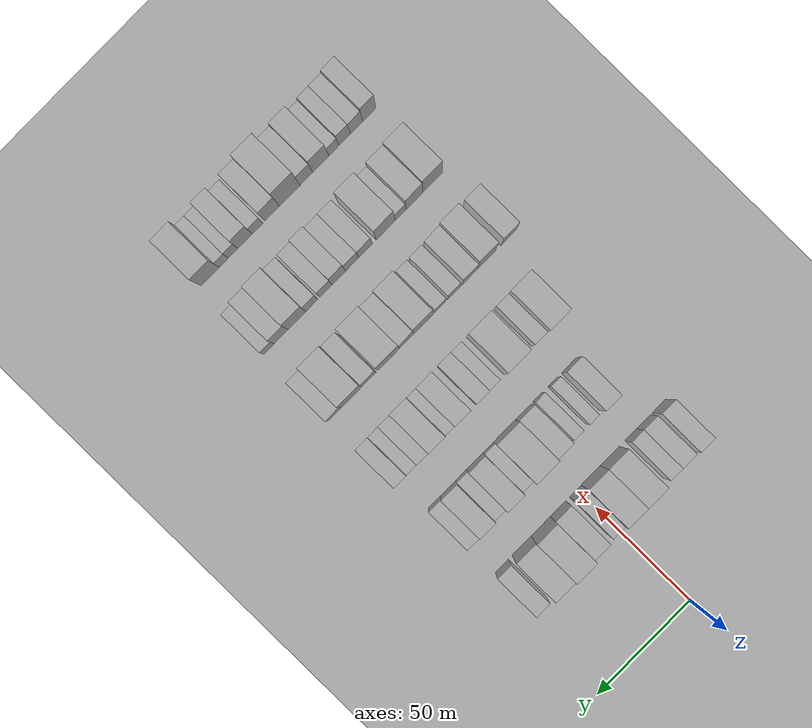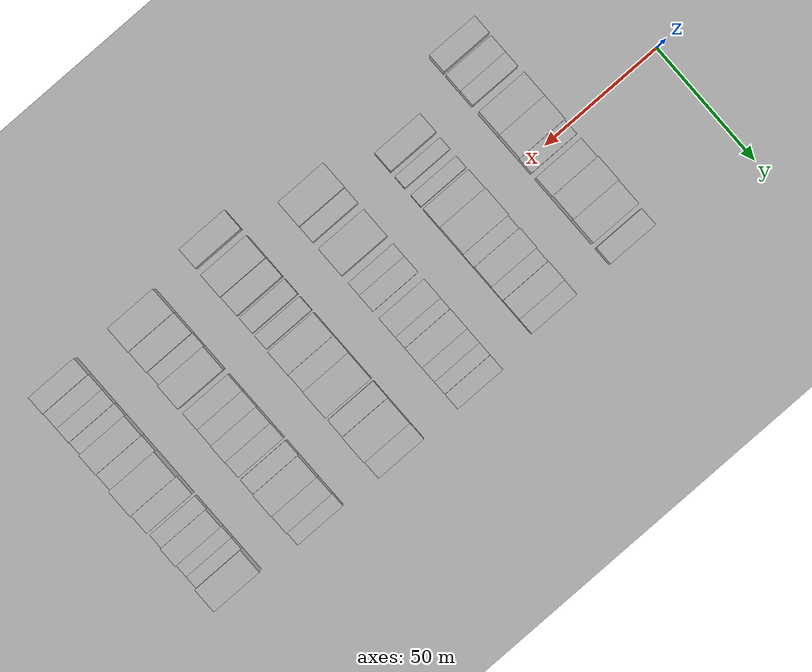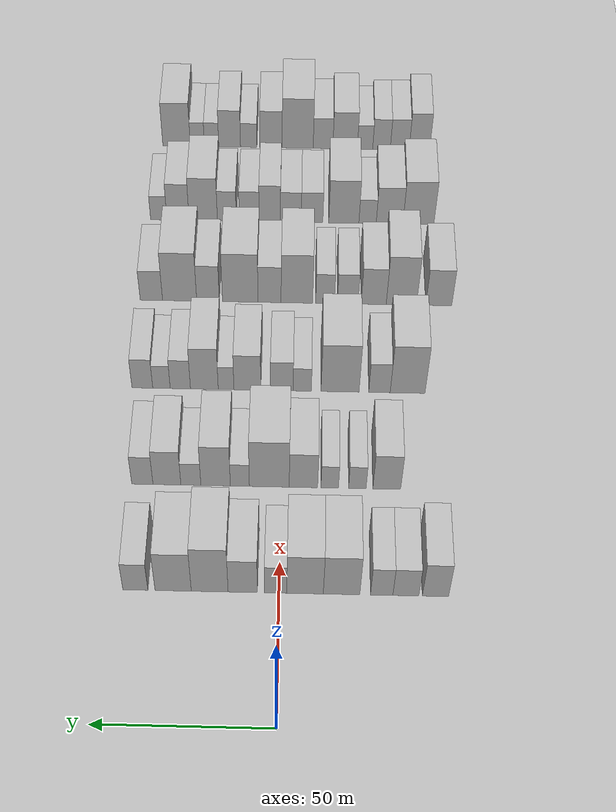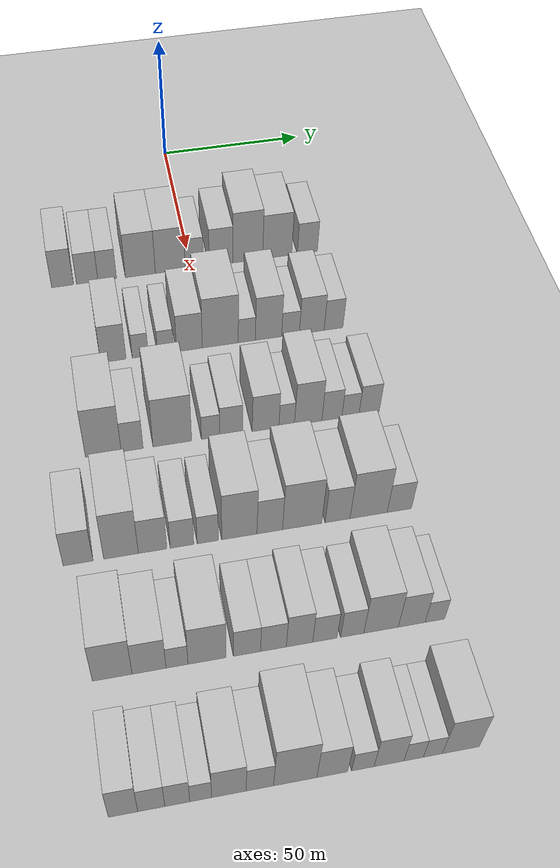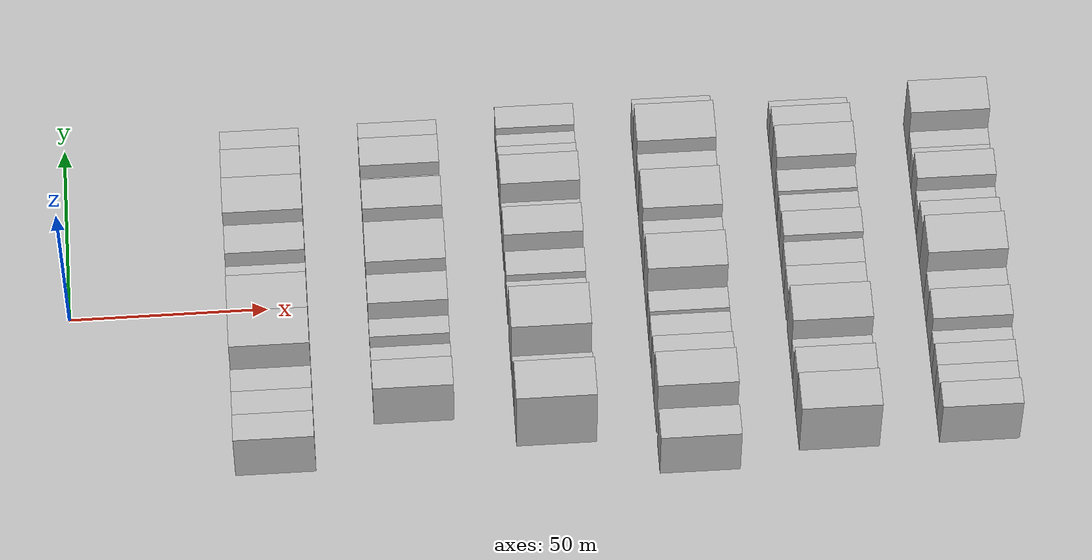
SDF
<sdf version="1.6">
 <world name="default">
  <include><name>ground_plane_1</name><uri>model://HANNAS_ground_plane</uri></include>
  <include>
   <name>ground_plane_2</name>
   <uri>model://HANNAS_ground_plane</uri>
   <pose>100 0 0  0 0 0</pose>
  </include>
  <model name="building_55">
   <static>1</static>
   <pose>50.0000 -43.9768 0 0.000000 0.000000 0.000000</pose>
   <link name="link">
    <pose>0 0 9.00 0 0 0</pose>
    <collision name="collision"><geometry><box><size>20.0000 7.3768 18.0000</size></box></geometry></collision>
    <visual name="visual">
     <cast_shadows>0</cast_shadows>
     <geometry><box><size>20.0000 7.3768 18.0000</size></box></geometry>
     <material>
      <script>
       <uri>model://HANNAS_wall/materials/scripts</uri>
       <uri>model://HANNAS_wall/materials/textures</uri>
       <name>vrc/HANNAS_wall</name>
      </script>
     </material>
    </visual>
   </link>
  </model>
  <model name="building_56">
   <static>1</static>
   <pose>50.0000 -35.6402 0 0.000000 0.000000 0.000000</pose>
   <link name="link">
    <pose>0 0 7.50 0 0 0</pose>
    <collision name="collision"><geometry><box><size>20.0000 7.2963 15.0000</size></box></geometry></collision>
    <visual name="visual">
     <cast_shadows>0</cast_shadows>
     <geometry><box><size>20.0000 7.2963 15.0000</size></box></geometry>
     <material>
      <script>
       <uri>model://HANNAS_wall/materials/scripts</uri>
       <uri>model://HANNAS_wall/materials/textures</uri>
       <name>vrc/HANNAS_wall</name>
      </script>
     </material>
    </visual>
   </link>
  </model>
  <model name="building_57">
   <static>1</static>
   <pose>50.0000 -28.8450 0 0.000000 0.000000 0.000000</pose>
   <link name="link">
    <pose>0 0 7.50 0 0 0</pose>
    <collision name="collision"><geometry><box><size>20.0000 6.2941 15.0000</size></box></geometry></collision>
    <visual name="visual">
     <cast_shadows>0</cast_shadows>
     <geometry><box><size>20.0000 6.2941 15.0000</size></box></geometry>
     <material>
      <script>
       <uri>model://HANNAS_wall/materials/scripts</uri>
       <uri>model://HANNAS_wall/materials/textures</uri>
       <name>vrc/HANNAS_wall</name>
      </script>
     </material>
    </visual>
   </link>
  </model>
  <model name="building_58">
   <static>1</static>
   <pose>50.0000 -17.5523 0 0.000000 0.000000 0.000000</pose>
   <link name="link">
    <pose>0 0 10.50 0 0 0</pose>
    <collision name="collision"><geometry><box><size>20.0000 10.2912 21.0000</size></box></geometry></collision>
    <visual name="visual">
     <cast_shadows>0</cast_shadows>
     <geometry><box><size>20.0000 10.2912 21.0000</size></box></geometry>
     <material>
      <script>
       <uri>model://HANNAS_wall/materials/scripts</uri>
       <uri>model://HANNAS_wall/materials/textures</uri>
       <name>vrc/HANNAS_wall</name>
      </script>
     </material>
    </visual>
   </link>
  </model>
  <model name="building_59">
   <static>1</static>
   <pose>50.0000 -7.2520 0 0.000000 0.000000 0.000000</pose>
   <link name="link">
    <pose>0 0 10.50 0 0 0</pose>
    <collision name="collision"><geometry><box><size>20.0000 10.3095 21.0000</size></box></geometry></collision>
    <visual name="visual">
     <cast_shadows>0</cast_shadows>
     <geometry><box><size>20.0000 10.3095 21.0000</size></box></geometry>
     <material>
      <script>
       <uri>model://HANNAS_wall/materials/scripts</uri>
       <uri>model://HANNAS_wall/materials/textures</uri>
       <name>vrc/HANNAS_wall</name>
      </script>
     </material>
    </visual>
   </link>
  </model>
  <model name="building_60">
   <static>1</static>
   <pose>50.0000 1.0371 0 0.000000 0.000000 0.000000</pose>
   <link name="link">
    <pose>0 0 7.50 0 0 0</pose>
    <collision name="collision"><geometry><box><size>20.0000 6.2686 15.0000</size></box></geometry></collision>
    <visual name="visual">
     <cast_shadows>0</cast_shadows>
     <geometry><box><size>20.0000 6.2686 15.0000</size></box></geometry>
     <material>
      <script>
       <uri>model://HANNAS_wall/materials/scripts</uri>
       <uri>model://HANNAS_wall/materials/textures</uri>
       <name>vrc/HANNAS_wall</name>
      </script>
     </material>
    </visual>
   </link>
  </model>
  <model name="building_61">
   <static>1</static>
   <pose>50.0000 10.2967 0 0.000000 0.000000 0.000000</pose>
   <link name="link">
    <pose>0 0 9.00 0 0 0</pose>
    <collision name="collision"><geometry><box><size>20.0000 8.2506 18.0000</size></box></geometry></collision>
    <visual name="visual">
     <cast_shadows>0</cast_shadows>
     <geometry><box><size>20.0000 8.2506 18.0000</size></box></geometry>
     <material>
      <script>
       <uri>model://HANNAS_wall/materials/scripts</uri>
       <uri>model://HANNAS_wall/materials/textures</uri>
       <name>vrc/HANNAS_wall</name>
      </script>
     </material>
    </visual>
   </link>
  </model>
  <model name="building_62">
   <static>1</static>
   <pose>50.0000 19.6122 0 0.000000 0.000000 0.000000</pose>
   <link name="link">
    <pose>0 0 12.00 0 0 0</pose>
    <collision name="collision"><geometry><box><size>20.0000 10.3805 24.0000</size></box></geometry></collision>
    <visual name="visual">
     <cast_shadows>0</cast_shadows>
     <geometry><box><size>20.0000 10.3805 24.0000</size></box></geometry>
     <material>
      <script>
       <uri>model://HANNAS_wall/materials/scripts</uri>
       <uri>model://HANNAS_wall/materials/textures</uri>
       <name>vrc/HANNAS_wall</name>
      </script>
     </material>
    </visual>
   </link>
  </model>
  <model name="building_63">
   <static>1</static>
   <pose>50.0000 29.9259 0 0.000000 0.000000 0.000000</pose>
   <link name="link">
    <pose>0 0 10.50 0 0 0</pose>
    <collision name="collision"><geometry><box><size>20.0000 10.2469 21.0000</size></box></geometry></collision>
    <visual name="visual">
     <cast_shadows>0</cast_shadows>
     <geometry><box><size>20.0000 10.2469 21.0000</size></box></geometry>
     <material>
      <script>
       <uri>model://HANNAS_wall/materials/scripts</uri>
       <uri>model://HANNAS_wall/materials/textures</uri>
       <name>vrc/HANNAS_wall</name>
      </script>
     </material>
    </visual>
   </link>
  </model>
  <model name="building_64">
   <static>1</static>
   <pose>50.0000 40.5911 0 0.000000 0.000000 0.000000</pose>
   <link name="link">
    <pose>0 0 7.50 0 0 0</pose>
    <collision name="collision"><geometry><box><size>20.0000 7.0836 15.0000</size></box></geometry></collision>
    <visual name="visual">
     <cast_shadows>0</cast_shadows>
     <geometry><box><size>20.0000 7.0836 15.0000</size></box></geometry>
     <material>
      <script>
       <uri>model://HANNAS_wall/materials/scripts</uri>
       <uri>model://HANNAS_wall/materials/textures</uri>
       <name>vrc/HANNAS_wall</name>
      </script>
     </material>
    </visual>
   </link>
  </model>
  <model name="building_175">
   <static>1</static>
   <pose>85.0000 -31.0818 0 0.000000 0.000000 0.000000</pose>
   <link name="link">
    <pose>0 0 9.00 0 0 0</pose>
    <collision name="collision"><geometry><box><size>20.0000 8.2055 18.0000</size></box></geometry></collision>
    <visual name="visual">
     <cast_shadows>0</cast_shadows>
     <geometry><box><size>20.0000 8.2055 18.0000</size></box></geometry>
     <material>
      <script>
       <uri>model://HANNAS_wall/materials/scripts</uri>
       <uri>model://HANNAS_wall/materials/textures</uri>
       <name>vrc/HANNAS_wall</name>
      </script>
     </material>
    </visual>
   </link>
  </model>
  <model name="building_176">
   <static>1</static>
   <pose>85.0000 -22.3887 0 0.000000 0.000000 0.000000</pose>
   <link name="link">
    <pose>0 0 6.00 0 0 0</pose>
    <collision name="collision"><geometry><box><size>20.0000 5.1806 12.0000</size></box></geometry></collision>
    <visual name="visual">
     <cast_shadows>0</cast_shadows>
     <geometry><box><size>20.0000 5.1806 12.0000</size></box></geometry>
     <material>
      <script>
       <uri>model://HANNAS_wall/materials/scripts</uri>
       <uri>model://HANNAS_wall/materials/textures</uri>
       <name>vrc/HANNAS_wall</name>
      </script>
     </material>
    </visual>
   </link>
  </model>
  <model name="building_177">
   <static>1</static>
   <pose>85.0000 -14.2085 0 0.000000 0.000000 0.000000</pose>
   <link name="link">
    <pose>0 0 6.00 0 0 0</pose>
    <collision name="collision"><geometry><box><size>20.0000 5.1797 12.0000</size></box></geometry></collision>
    <visual name="visual">
     <cast_shadows>0</cast_shadows>
     <geometry><box><size>20.0000 5.1797 12.0000</size></box></geometry>
     <material>
      <script>
       <uri>model://HANNAS_wall/materials/scripts</uri>
       <uri>model://HANNAS_wall/materials/textures</uri>
       <name>vrc/HANNAS_wall</name>
      </script>
     </material>
    </visual>
   </link>
  </model>
  <model name="building_178">
   <static>1</static>
   <pose>85.0000 -6.4196 0 0.000000 0.000000 0.000000</pose>
   <link name="link">
    <pose>0 0 9.00 0 0 0</pose>
    <collision name="collision"><geometry><box><size>20.0000 8.3982 18.0000</size></box></geometry></collision>
    <visual name="visual">
     <cast_shadows>0</cast_shadows>
     <geometry><box><size>20.0000 8.3982 18.0000</size></box></geometry>
     <material>
      <script>
       <uri>model://HANNAS_wall/materials/scripts</uri>
       <uri>model://HANNAS_wall/materials/textures</uri>
       <name>vrc/HANNAS_wall</name>
      </script>
     </material>
    </visual>
   </link>
  </model>
  <model name="building_179">
   <static>1</static>
   <pose>85.0000 3.6711 0 0.000000 0.000000 0.000000</pose>
   <link name="link">
    <pose>0 0 12.00 0 0 0</pose>
    <collision name="collision"><geometry><box><size>20.0000 11.7831 24.0000</size></box></geometry></collision>
    <visual name="visual">
     <cast_shadows>0</cast_shadows>
     <geometry><box><size>20.0000 11.7831 24.0000</size></box></geometry>
     <material>
      <script>
       <uri>model://HANNAS_wall/materials/scripts</uri>
       <uri>model://HANNAS_wall/materials/textures</uri>
       <name>vrc/HANNAS_wall</name>
      </script>
     </material>
    </visual>
   </link>
  </model>
  <model name="building_180">
   <static>1</static>
   <pose>85.0000 12.3757 0 0.000000 0.000000 0.000000</pose>
   <link name="link">
    <pose>0 0 6.00 0 0 0</pose>
    <collision name="collision"><geometry><box><size>20.0000 5.6262 12.0000</size></box></geometry></collision>
    <visual name="visual">
     <cast_shadows>0</cast_shadows>
     <geometry><box><size>20.0000 5.6262 12.0000</size></box></geometry>
     <material>
      <script>
       <uri>model://HANNAS_wall/materials/scripts</uri>
       <uri>model://HANNAS_wall/materials/textures</uri>
       <name>vrc/HANNAS_wall</name>
      </script>
     </material>
    </visual>
   </link>
  </model>
  <model name="building_181">
   <static>1</static>
   <pose>85.0000 19.5526 0 0.000000 0.000000 0.000000</pose>
   <link name="link">
    <pose>0 0 10.50 0 0 0</pose>
    <collision name="collision"><geometry><box><size>20.0000 8.7275 21.0000</size></box></geometry></collision>
    <visual name="visual">
     <cast_shadows>0</cast_shadows>
     <geometry><box><size>20.0000 8.7275 21.0000</size></box></geometry>
     <material>
      <script>
       <uri>model://HANNAS_wall/materials/scripts</uri>
       <uri>model://HANNAS_wall/materials/textures</uri>
       <name>vrc/HANNAS_wall</name>
      </script>
     </material>
    </visual>
   </link>
  </model>
  <model name="building_182">
   <static>1</static>
   <pose>85.0000 26.8824 0 0.000000 0.000000 0.000000</pose>
   <link name="link">
    <pose>0 0 6.00 0 0 0</pose>
    <collision name="collision"><geometry><box><size>20.0000 5.9322 12.0000</size></box></geometry></collision>
    <visual name="visual">
     <cast_shadows>0</cast_shadows>
     <geometry><box><size>20.0000 5.9322 12.0000</size></box></geometry>
     <material>
      <script>
       <uri>model://HANNAS_wall/materials/scripts</uri>
       <uri>model://HANNAS_wall/materials/textures</uri>
       <name>vrc/HANNAS_wall</name>
      </script>
     </material>
    </visual>
   </link>
  </model>
  <model name="building_183">
   <static>1</static>
   <pose>85.0000 33.9861 0 0.000000 0.000000 0.000000</pose>
   <link name="link">
    <pose>0 0 9.00 0 0 0</pose>
    <collision name="collision"><geometry><box><size>20.0000 8.2751 18.0000</size></box></geometry></collision>
    <visual name="visual">
     <cast_shadows>0</cast_shadows>
     <geometry><box><size>20.0000 8.2751 18.0000</size></box></geometry>
     <material>
      <script>
       <uri>model://HANNAS_wall/materials/scripts</uri>
       <uri>model://HANNAS_wall/materials/textures</uri>
       <name>vrc/HANNAS_wall</name>
      </script>
     </material>
    </visual>
   </link>
  </model>
  <model name="building_184">
   <static>1</static>
   <pose>85.0000 41.2750 0 0.000000 0.000000 0.000000</pose>
   <link name="link">
    <pose>0 0 7.50 0 0 0</pose>
    <collision name="collision"><geometry><box><size>20.0000 6.3028 15.0000</size></box></geometry></collision>
    <visual name="visual">
     <cast_shadows>0</cast_shadows>
     <geometry><box><size>20.0000 6.3028 15.0000</size></box></geometry>
     <material>
      <script>
       <uri>model://HANNAS_wall/materials/scripts</uri>
       <uri>model://HANNAS_wall/materials/textures</uri>
       <name>vrc/HANNAS_wall</name>
      </script>
     </material>
    </visual>
   </link>
  </model>
  <model name="building_298">
   <static>1</static>
   <pose>120.0000 -38.3432 0 0.000000 0.000000 0.000000</pose>
   <link name="link">
    <pose>0 0 12.00 0 0 0</pose>
    <collision name="collision"><geometry><box><size>20.0000 10.7749 24.0000</size></box></geometry></collision>
    <visual name="visual">
     <cast_shadows>0</cast_shadows>
     <geometry><box><size>20.0000 10.7749 24.0000</size></box></geometry>
     <material>
      <script>
       <uri>model://HANNAS_wall/materials/scripts</uri>
       <uri>model://HANNAS_wall/materials/textures</uri>
       <name>vrc/HANNAS_wall</name>
      </script>
     </material>
    </visual>
   </link>
  </model>
  <model name="building_299">
   <static>1</static>
   <pose>120.0000 -29.6377 0 0.000000 0.000000 0.000000</pose>
   <link name="link">
    <pose>0 0 7.50 0 0 0</pose>
    <collision name="collision"><geometry><box><size>20.0000 6.6361 15.0000</size></box></geometry></collision>
    <visual name="visual">
     <cast_shadows>0</cast_shadows>
     <geometry><box><size>20.0000 6.6361 15.0000</size></box></geometry>
     <material>
      <script>
       <uri>model://HANNAS_wall/materials/scripts</uri>
       <uri>model://HANNAS_wall/materials/textures</uri>
       <name>vrc/HANNAS_wall</name>
      </script>
     </material>
    </visual>
   </link>
  </model>
  <model name="building_300">
   <static>1</static>
   <pose>120.0000 -17.4165 0 0.000000 0.000000 0.000000</pose>
   <link name="link">
    <pose>0 0 12.00 0 0 0</pose>
    <collision name="collision"><geometry><box><size>20.0000 11.8064 24.0000</size></box></geometry></collision>
    <visual name="visual">
     <cast_shadows>0</cast_shadows>
     <geometry><box><size>20.0000 11.8064 24.0000</size></box></geometry>
     <material>
      <script>
       <uri>model://HANNAS_wall/materials/scripts</uri>
       <uri>model://HANNAS_wall/materials/textures</uri>
       <name>vrc/HANNAS_wall</name>
      </script>
     </material>
    </visual>
   </link>
  </model>
  <model name="building_301">
   <static>1</static>
   <pose>120.0000 -5.6868 0 0.000000 0.000000 0.000000</pose>
   <link name="link">
    <pose>0 0 6.00 0 0 0</pose>
    <collision name="collision"><geometry><box><size>20.0000 5.6530 12.0000</size></box></geometry></collision>
    <visual name="visual">
     <cast_shadows>0</cast_shadows>
     <geometry><box><size>20.0000 5.6530 12.0000</size></box></geometry>
     <material>
      <script>
       <uri>model://HANNAS_wall/materials/scripts</uri>
       <uri>model://HANNAS_wall/materials/textures</uri>
       <name>vrc/HANNAS_wall</name>
      </script>
     </material>
    </visual>
   </link>
  </model>
  <model name="building_302">
   <static>1</static>
   <pose>120.0000 0.6489 0 0.000000 0.000000 0.000000</pose>
   <link name="link">
    <pose>0 0 7.50 0 0 0</pose>
    <collision name="collision"><geometry><box><size>20.0000 7.0184 15.0000</size></box></geometry></collision>
    <visual name="visual">
     <cast_shadows>0</cast_shadows>
     <geometry><box><size>20.0000 7.0184 15.0000</size></box></geometry>
     <material>
      <script>
       <uri>model://HANNAS_wall/materials/scripts</uri>
       <uri>model://HANNAS_wall/materials/textures</uri>
       <name>vrc/HANNAS_wall</name>
      </script>
     </material>
    </visual>
   </link>
  </model>
  <model name="building_303">
   <static>1</static>
   <pose>120.0000 11.3256 0 0.000000 0.000000 0.000000</pose>
   <link name="link">
    <pose>0 0 9.00 0 0 0</pose>
    <collision name="collision"><geometry><box><size>20.0000 8.3350 18.0000</size></box></geometry></collision>
    <visual name="visual">
     <cast_shadows>0</cast_shadows>
     <geometry><box><size>20.0000 8.3350 18.0000</size></box></geometry>
     <material>
      <script>
       <uri>model://HANNAS_wall/materials/scripts</uri>
       <uri>model://HANNAS_wall/materials/textures</uri>
       <name>vrc/HANNAS_wall</name>
      </script>
     </material>
    </visual>
   </link>
  </model>
  <model name="building_304">
   <static>1</static>
   <pose>120.0000 17.9224 0 0.000000 0.000000 0.000000</pose>
   <link name="link">
    <pose>0 0 6.00 0 0 0</pose>
    <collision name="collision"><geometry><box><size>20.0000 4.8585 12.0000</size></box></geometry></collision>
    <visual name="visual">
     <cast_shadows>0</cast_shadows>
     <geometry><box><size>20.0000 4.8585 12.0000</size></box></geometry>
     <material>
      <script>
       <uri>model://HANNAS_wall/materials/scripts</uri>
       <uri>model://HANNAS_wall/materials/textures</uri>
       <name>vrc/HANNAS_wall</name>
      </script>
     </material>
    </visual>
   </link>
  </model>
  <model name="building_305">
   <static>1</static>
   <pose>120.0000 24.6654 0 0.000000 0.000000 0.000000</pose>
   <link name="link">
    <pose>0 0 10.50 0 0 0</pose>
    <collision name="collision"><geometry><box><size>20.0000 8.6275 21.0000</size></box></geometry></collision>
    <visual name="visual">
     <cast_shadows>0</cast_shadows>
     <geometry><box><size>20.0000 8.6275 21.0000</size></box></geometry>
     <material>
      <script>
       <uri>model://HANNAS_wall/materials/scripts</uri>
       <uri>model://HANNAS_wall/materials/textures</uri>
       <name>vrc/HANNAS_wall</name>
      </script>
     </material>
    </visual>
   </link>
  </model>
  <model name="building_306">
   <static>1</static>
   <pose>120.0000 32.1276 0 0.000000 0.000000 0.000000</pose>
   <link name="link">
    <pose>0 0 7.50 0 0 0</pose>
    <collision name="collision"><geometry><box><size>20.0000 6.2968 15.0000</size></box></geometry></collision>
    <visual name="visual">
     <cast_shadows>0</cast_shadows>
     <geometry><box><size>20.0000 6.2968 15.0000</size></box></geometry>
     <material>
      <script>
       <uri>model://HANNAS_wall/materials/scripts</uri>
       <uri>model://HANNAS_wall/materials/textures</uri>
       <name>vrc/HANNAS_wall</name>
      </script>
     </material>
    </visual>
   </link>
  </model>
  <model name="building_307">
   <static>1</static>
   <pose>120.0000 37.9907 0 0.000000 0.000000 0.000000</pose>
   <link name="link">
    <pose>0 0 6.00 0 0 0</pose>
    <collision name="collision"><geometry><box><size>20.0000 5.4295 12.0000</size></box></geometry></collision>
    <visual name="visual">
     <cast_shadows>0</cast_shadows>
     <geometry><box><size>20.0000 5.4295 12.0000</size></box></geometry>
     <material>
      <script>
       <uri>model://HANNAS_wall/materials/scripts</uri>
       <uri>model://HANNAS_wall/materials/textures</uri>
       <name>vrc/HANNAS_wall</name>
      </script>
     </material>
    </visual>
   </link>
  </model>
  <model name="building_308">
   <static>1</static>
   <pose>120.0000 43.9283 0 0.000000 0.000000 0.000000</pose>
   <link name="link">
    <pose>0 0 7.50 0 0 0</pose>
    <collision name="collision"><geometry><box><size>20.0000 6.4457 15.0000</size></box></geometry></collision>
    <visual name="visual">
     <cast_shadows>0</cast_shadows>
     <geometry><box><size>20.0000 6.4457 15.0000</size></box></geometry>
     <material>
      <script>
       <uri>model://HANNAS_wall/materials/scripts</uri>
       <uri>model://HANNAS_wall/materials/textures</uri>
       <name>vrc/HANNAS_wall</name>
      </script>
     </material>
    </visual>
   </link>
  </model>
  <model name="building_418">
   <static>1</static>
   <pose>155.0000 -49.5287 0 0.000000 0.000000 0.000000</pose>
   <link name="link">
    <pose>0 0 9.00 0 0 0</pose>
    <collision name="collision"><geometry><box><size>20.0000 8.3902 18.0000</size></box></geometry></collision>
    <visual name="visual">
     <cast_shadows>0</cast_shadows>
     <geometry><box><size>20.0000 8.3902 18.0000</size></box></geometry>
     <material>
      <script>
       <uri>model://HANNAS_wall/materials/scripts</uri>
       <uri>model://HANNAS_wall/materials/textures</uri>
       <name>vrc/HANNAS_wall</name>
      </script>
     </material>
    </visual>
   </link>
  </model>
  <model name="building_419">
   <static>1</static>
   <pose>155.0000 -37.4310 0 0.000000 0.000000 0.000000</pose>
   <link name="link">
    <pose>0 0 12.00 0 0 0</pose>
    <collision name="collision"><geometry><box><size>20.0000 9.8051 24.0000</size></box></geometry></collision>
    <visual name="visual">
     <cast_shadows>0</cast_shadows>
     <geometry><box><size>20.0000 9.8051 24.0000</size></box></geometry>
     <material>
      <script>
       <uri>model://HANNAS_wall/materials/scripts</uri>
       <uri>model://HANNAS_wall/materials/textures</uri>
       <name>vrc/HANNAS_wall</name>
      </script>
     </material>
    </visual>
   </link>
  </model>
  <model name="building_420">
   <static>1</static>
   <pose>155.0000 -28.4761 0 0.000000 0.000000 0.000000</pose>
   <link name="link">
    <pose>0 0 9.00 0 0 0</pose>
    <collision name="collision"><geometry><box><size>20.0000 8.1049 18.0000</size></box></geometry></collision>
    <visual name="visual">
     <cast_shadows>0</cast_shadows>
     <geometry><box><size>20.0000 8.1049 18.0000</size></box></geometry>
     <material>
      <script>
       <uri>model://HANNAS_wall/materials/scripts</uri>
       <uri>model://HANNAS_wall/materials/textures</uri>
       <name>vrc/HANNAS_wall</name>
      </script>
     </material>
    </visual>
   </link>
  </model>
  <model name="building_421">
   <static>1</static>
   <pose>155.0000 -20.0626 0 0.000000 0.000000 0.000000</pose>
   <link name="link">
    <pose>0 0 7.50 0 0 0</pose>
    <collision name="collision"><geometry><box><size>20.0000 6.7221 15.0000</size></box></geometry></collision>
    <visual name="visual">
     <cast_shadows>0</cast_shadows>
     <geometry><box><size>20.0000 6.7221 15.0000</size></box></geometry>
     <material>
      <script>
       <uri>model://HANNAS_wall/materials/scripts</uri>
       <uri>model://HANNAS_wall/materials/textures</uri>
       <name>vrc/HANNAS_wall</name>
      </script>
     </material>
    </visual>
   </link>
  </model>
  <model name="building_422">
   <static>1</static>
   <pose>155.0000 -12.6733 0 0.000000 0.000000 0.000000</pose>
   <link name="link">
    <pose>0 0 7.50 0 0 0</pose>
    <collision name="collision"><geometry><box><size>20.0000 6.0564 15.0000</size></box></geometry></collision>
    <visual name="visual">
     <cast_shadows>0</cast_shadows>
     <geometry><box><size>20.0000 6.0564 15.0000</size></box></geometry>
     <material>
      <script>
       <uri>model://HANNAS_wall/materials/scripts</uri>
       <uri>model://HANNAS_wall/materials/textures</uri>
       <name>vrc/HANNAS_wall</name>
      </script>
     </material>
    </visual>
   </link>
  </model>
  <model name="building_423">
   <static>1</static>
   <pose>155.0000 -3.5448 0 0.000000 0.000000 0.000000</pose>
   <link name="link">
    <pose>0 0 12.00 0 0 0</pose>
    <collision name="collision"><geometry><box><size>20.0000 10.2007 24.0000</size></box></geometry></collision>
    <visual name="visual">
     <cast_shadows>0</cast_shadows>
     <geometry><box><size>20.0000 10.2007 24.0000</size></box></geometry>
     <material>
      <script>
       <uri>model://HANNAS_wall/materials/scripts</uri>
       <uri>model://HANNAS_wall/materials/textures</uri>
       <name>vrc/HANNAS_wall</name>
      </script>
     </material>
    </visual>
   </link>
  </model>
  <model name="building_424">
   <static>1</static>
   <pose>155.0000 5.3034 0 0.000000 0.000000 0.000000</pose>
   <link name="link">
    <pose>0 0 9.00 0 0 0</pose>
    <collision name="collision"><geometry><box><size>20.0000 7.4955 18.0000</size></box></geometry></collision>
    <visual name="visual">
     <cast_shadows>0</cast_shadows>
     <geometry><box><size>20.0000 7.4955 18.0000</size></box></geometry>
     <material>
      <script>
       <uri>model://HANNAS_wall/materials/scripts</uri>
       <uri>model://HANNAS_wall/materials/textures</uri>
       <name>vrc/HANNAS_wall</name>
      </script>
     </material>
    </visual>
   </link>
  </model>
  <model name="building_425">
   <static>1</static>
   <pose>155.0000 14.8056 0 0.000000 0.000000 0.000000</pose>
   <link name="link">
    <pose>0 0 12.00 0 0 0</pose>
    <collision name="collision"><geometry><box><size>20.0000 11.5089 24.0000</size></box></geometry></collision>
    <visual name="visual">
     <cast_shadows>0</cast_shadows>
     <geometry><box><size>20.0000 11.5089 24.0000</size></box></geometry>
     <material>
      <script>
       <uri>model://HANNAS_wall/materials/scripts</uri>
       <uri>model://HANNAS_wall/materials/textures</uri>
       <name>vrc/HANNAS_wall</name>
      </script>
     </material>
    </visual>
   </link>
  </model>
  <model name="building_426">
   <static>1</static>
   <pose>155.0000 25.2402 0 0.000000 0.000000 0.000000</pose>
   <link name="link">
    <pose>0 0 9.00 0 0 0</pose>
    <collision name="collision"><geometry><box><size>20.0000 7.3604 18.0000</size></box></geometry></collision>
    <visual name="visual">
     <cast_shadows>0</cast_shadows>
     <geometry><box><size>20.0000 7.3604 18.0000</size></box></geometry>
     <material>
      <script>
       <uri>model://HANNAS_wall/materials/scripts</uri>
       <uri>model://HANNAS_wall/materials/textures</uri>
       <name>vrc/HANNAS_wall</name>
      </script>
     </material>
    </visual>
   </link>
  </model>
  <model name="building_427">
   <static>1</static>
   <pose>155.0000 34.4680 0 0.000000 0.000000 0.000000</pose>
   <link name="link">
    <pose>0 0 12.00 0 0 0</pose>
    <collision name="collision"><geometry><box><size>20.0000 11.0951 24.0000</size></box></geometry></collision>
    <visual name="visual">
     <cast_shadows>0</cast_shadows>
     <geometry><box><size>20.0000 11.0951 24.0000</size></box></geometry>
     <material>
      <script>
       <uri>model://HANNAS_wall/materials/scripts</uri>
       <uri>model://HANNAS_wall/materials/textures</uri>
       <name>vrc/HANNAS_wall</name>
      </script>
     </material>
    </visual>
   </link>
  </model>
  <model name="building_428">
   <static>1</static>
   <pose>155.0000 43.6502 0 0.000000 0.000000 0.000000</pose>
   <link name="link">
    <pose>0 0 7.50 0 0 0</pose>
    <collision name="collision"><geometry><box><size>20.0000 7.2694 15.0000</size></box></geometry></collision>
    <visual name="visual">
     <cast_shadows>0</cast_shadows>
     <geometry><box><size>20.0000 7.2694 15.0000</size></box></geometry>
     <material>
      <script>
       <uri>model://HANNAS_wall/materials/scripts</uri>
       <uri>model://HANNAS_wall/materials/textures</uri>
       <name>vrc/HANNAS_wall</name>
      </script>
     </material>
    </visual>
   </link>
  </model>
  <model name="building_546">
   <static>1</static>
   <pose>190.0000 -44.1742 0 0.000000 0.000000 0.000000</pose>
   <link name="link">
    <pose>0 0 10.50 0 0 0</pose>
    <collision name="collision"><geometry><box><size>20.0000 10.4614 21.0000</size></box></geometry></collision>
    <visual name="visual">
     <cast_shadows>0</cast_shadows>
     <geometry><box><size>20.0000 10.4614 21.0000</size></box></geometry>
     <material>
      <script>
       <uri>model://HANNAS_wall/materials/scripts</uri>
       <uri>model://HANNAS_wall/materials/textures</uri>
       <name>vrc/HANNAS_wall</name>
      </script>
     </material>
    </visual>
   </link>
  </model>
  <model name="building_547">
   <static>1</static>
   <pose>190.0000 -34.4466 0 0.000000 0.000000 0.000000</pose>
   <link name="link">
    <pose>0 0 9.00 0 0 0</pose>
    <collision name="collision"><geometry><box><size>20.0000 8.9940 18.0000</size></box></geometry></collision>
    <visual name="visual">
     <cast_shadows>0</cast_shadows>
     <geometry><box><size>20.0000 8.9940 18.0000</size></box></geometry>
     <material>
      <script>
       <uri>model://HANNAS_wall/materials/scripts</uri>
       <uri>model://HANNAS_wall/materials/textures</uri>
       <name>vrc/HANNAS_wall</name>
      </script>
     </material>
    </visual>
   </link>
  </model>
  <model name="building_548">
   <static>1</static>
   <pose>190.0000 -27.0204 0 0.000000 0.000000 0.000000</pose>
   <link name="link">
    <pose>0 0 6.00 0 0 0</pose>
    <collision name="collision"><geometry><box><size>20.0000 5.8584 12.0000</size></box></geometry></collision>
    <visual name="visual">
     <cast_shadows>0</cast_shadows>
     <geometry><box><size>20.0000 5.8584 12.0000</size></box></geometry>
     <material>
      <script>
       <uri>model://HANNAS_wall/materials/scripts</uri>
       <uri>model://HANNAS_wall/materials/textures</uri>
       <name>vrc/HANNAS_wall</name>
      </script>
     </material>
    </visual>
   </link>
  </model>
  <model name="building_549">
   <static>1</static>
   <pose>190.0000 -18.9887 0 0.000000 0.000000 0.000000</pose>
   <link name="link">
    <pose>0 0 10.50 0 0 0</pose>
    <collision name="collision"><geometry><box><size>20.0000 10.2049 21.0000</size></box></geometry></collision>
    <visual name="visual">
     <cast_shadows>0</cast_shadows>
     <geometry><box><size>20.0000 10.2049 21.0000</size></box></geometry>
     <material>
      <script>
       <uri>model://HANNAS_wall/materials/scripts</uri>
       <uri>model://HANNAS_wall/materials/textures</uri>
       <name>vrc/HANNAS_wall</name>
      </script>
     </material>
    </visual>
   </link>
  </model>
  <model name="building_550">
   <static>1</static>
   <pose>190.0000 -8.2223 0 0.000000 0.000000 0.000000</pose>
   <link name="link">
    <pose>0 0 7.50 0 0 0</pose>
    <collision name="collision"><geometry><box><size>20.0000 7.3279 15.0000</size></box></geometry></collision>
    <visual name="visual">
     <cast_shadows>0</cast_shadows>
     <geometry><box><size>20.0000 7.3279 15.0000</size></box></geometry>
     <material>
      <script>
       <uri>model://HANNAS_wall/materials/scripts</uri>
       <uri>model://HANNAS_wall/materials/textures</uri>
       <name>vrc/HANNAS_wall</name>
      </script>
     </material>
    </visual>
   </link>
  </model>
  <model name="building_551">
   <static>1</static>
   <pose>190.0000 -1.0425 0 0.000000 0.000000 0.000000</pose>
   <link name="link">
    <pose>0 0 7.50 0 0 0</pose>
    <collision name="collision"><geometry><box><size>20.0000 7.0317 15.0000</size></box></geometry></collision>
    <visual name="visual">
     <cast_shadows>0</cast_shadows>
     <geometry><box><size>20.0000 7.0317 15.0000</size></box></geometry>
     <material>
      <script>
       <uri>model://HANNAS_wall/materials/scripts</uri>
       <uri>model://HANNAS_wall/materials/textures</uri>
       <name>vrc/HANNAS_wall</name>
      </script>
     </material>
    </visual>
   </link>
  </model>
  <model name="building_552">
   <static>1</static>
   <pose>190.0000 6.0773 0 0.000000 0.000000 0.000000</pose>
   <link name="link">
    <pose>0 0 9.00 0 0 0</pose>
    <collision name="collision"><geometry><box><size>20.0000 7.2080 18.0000</size></box></geometry></collision>
    <visual name="visual">
     <cast_shadows>0</cast_shadows>
     <geometry><box><size>20.0000 7.2080 18.0000</size></box></geometry>
     <material>
      <script>
       <uri>model://HANNAS_wall/materials/scripts</uri>
       <uri>model://HANNAS_wall/materials/textures</uri>
       <name>vrc/HANNAS_wall</name>
      </script>
     </material>
    </visual>
   </link>
  </model>
  <model name="building_553">
   <static>1</static>
   <pose>190.0000 13.0309 0 0.000000 0.000000 0.000000</pose>
   <link name="link">
    <pose>0 0 7.50 0 0 0</pose>
    <collision name="collision"><geometry><box><size>20.0000 6.6991 15.0000</size></box></geometry></collision>
    <visual name="visual">
     <cast_shadows>0</cast_shadows>
     <geometry><box><size>20.0000 6.6991 15.0000</size></box></geometry>
     <material>
      <script>
       <uri>model://HANNAS_wall/materials/scripts</uri>
       <uri>model://HANNAS_wall/materials/textures</uri>
       <name>vrc/HANNAS_wall</name>
      </script>
     </material>
    </visual>
   </link>
  </model>
  <model name="building_554">
   <static>1</static>
   <pose>190.0000 20.5789 0 0.000000 0.000000 0.000000</pose>
   <link name="link">
    <pose>0 0 7.50 0 0 0</pose>
    <collision name="collision"><geometry><box><size>20.0000 6.3971 15.0000</size></box></geometry></collision>
    <visual name="visual">
     <cast_shadows>0</cast_shadows>
     <geometry><box><size>20.0000 6.3971 15.0000</size></box></geometry>
     <material>
      <script>
       <uri>model://HANNAS_wall/materials/scripts</uri>
       <uri>model://HANNAS_wall/materials/textures</uri>
       <name>vrc/HANNAS_wall</name>
      </script>
     </material>
    </visual>
   </link>
  </model>
  <model name="building_555">
   <static>1</static>
   <pose>190.0000 28.5827 0 0.000000 0.000000 0.000000</pose>
   <link name="link">
    <pose>0 0 10.50 0 0 0</pose>
    <collision name="collision"><geometry><box><size>20.0000 9.6104 21.0000</size></box></geometry></collision>
    <visual name="visual">
     <cast_shadows>0</cast_shadows>
     <geometry><box><size>20.0000 9.6104 21.0000</size></box></geometry>
     <material>
      <script>
       <uri>model://HANNAS_wall/materials/scripts</uri>
       <uri>model://HANNAS_wall/materials/textures</uri>
       <name>vrc/HANNAS_wall</name>
      </script>
     </material>
    </visual>
   </link>
  </model>
  <model name="building_556">
   <static>1</static>
   <pose>190.0000 37.1460 0 0.000000 0.000000 0.000000</pose>
   <link name="link">
    <pose>0 0 9.00 0 0 0</pose>
    <collision name="collision"><geometry><box><size>20.0000 7.5162 18.0000</size></box></geometry></collision>
    <visual name="visual">
     <cast_shadows>0</cast_shadows>
     <geometry><box><size>20.0000 7.5162 18.0000</size></box></geometry>
     <material>
      <script>
       <uri>model://HANNAS_wall/materials/scripts</uri>
       <uri>model://HANNAS_wall/materials/textures</uri>
       <name>vrc/HANNAS_wall</name>
      </script>
     </material>
    </visual>
   </link>
  </model>
  <model name="building_557">
   <static>1</static>
   <pose>190.0000 43.6619 0 0.000000 0.000000 0.000000</pose>
   <link name="link">
    <pose>0 0 6.00 0 0 0</pose>
    <collision name="collision"><geometry><box><size>20.0000 5.5156 12.0000</size></box></geometry></collision>
    <visual name="visual">
     <cast_shadows>0</cast_shadows>
     <geometry><box><size>20.0000 5.5156 12.0000</size></box></geometry>
     <material>
      <script>
       <uri>model://HANNAS_wall/materials/scripts</uri>
       <uri>model://HANNAS_wall/materials/textures</uri>
       <name>vrc/HANNAS_wall</name>
      </script>
     </material>
    </visual>
   </link>
  </model>
  <model name="building_681">
   <static>1</static>
   <pose>225.0000 -45.7750 0 0.000000 0.000000 0.000000</pose>
   <link name="link">
    <pose>0 0 9.00 0 0 0</pose>
    <collision name="collision"><geometry><box><size>20.0000 7.2052 18.0000</size></box></geometry></collision>
    <visual name="visual">
     <cast_shadows>0</cast_shadows>
     <geometry><box><size>20.0000 7.2052 18.0000</size></box></geometry>
     <material>
      <script>
       <uri>model://HANNAS_wall/materials/scripts</uri>
       <uri>model://HANNAS_wall/materials/textures</uri>
       <name>vrc/HANNAS_wall</name>
      </script>
     </material>
    </visual>
   </link>
  </model>
  <model name="building_682">
   <static>1</static>
   <pose>225.0000 -38.8579 0 0.000000 0.000000 0.000000</pose>
   <link name="link">
    <pose>0 0 7.50 0 0 0</pose>
    <collision name="collision"><geometry><box><size>20.0000 6.6290 15.0000</size></box></geometry></collision>
    <visual name="visual">
     <cast_shadows>0</cast_shadows>
     <geometry><box><size>20.0000 6.6290 15.0000</size></box></geometry>
     <material>
      <script>
       <uri>model://HANNAS_wall/materials/scripts</uri>
       <uri>model://HANNAS_wall/materials/textures</uri>
       <name>vrc/HANNAS_wall</name>
      </script>
     </material>
    </visual>
   </link>
  </model>
  <model name="building_683">
   <static>1</static>
   <pose>225.0000 -32.4566 0 0.000000 0.000000 0.000000</pose>
   <link name="link">
    <pose>0 0 7.50 0 0 0</pose>
    <collision name="collision"><geometry><box><size>20.0000 6.1736 15.0000</size></box></geometry></collision>
    <visual name="visual">
     <cast_shadows>0</cast_shadows>
     <geometry><box><size>20.0000 6.1736 15.0000</size></box></geometry>
     <material>
      <script>
       <uri>model://HANNAS_wall/materials/scripts</uri>
       <uri>model://HANNAS_wall/materials/textures</uri>
       <name>vrc/HANNAS_wall</name>
      </script>
     </material>
    </visual>
   </link>
  </model>
  <model name="building_684">
   <static>1</static>
   <pose>225.0000 -26.6685 0 0.000000 0.000000 0.000000</pose>
   <link name="link">
    <pose>0 0 6.00 0 0 0</pose>
    <collision name="collision"><geometry><box><size>20.0000 5.4025 12.0000</size></box></geometry></collision>
    <visual name="visual">
     <cast_shadows>0</cast_shadows>
     <geometry><box><size>20.0000 5.4025 12.0000</size></box></geometry>
     <material>
      <script>
       <uri>model://HANNAS_wall/materials/scripts</uri>
       <uri>model://HANNAS_wall/materials/textures</uri>
       <name>vrc/HANNAS_wall</name>
      </script>
     </material>
    </visual>
   </link>
  </model>
  <model name="building_685">
   <static>1</static>
   <pose>225.0000 -19.6471 0 0.000000 0.000000 0.000000</pose>
   <link name="link">
    <pose>0 0 9.00 0 0 0</pose>
    <collision name="collision"><geometry><box><size>20.0000 8.6404 18.0000</size></box></geometry></collision>
    <visual name="visual">
     <cast_shadows>0</cast_shadows>
     <geometry><box><size>20.0000 8.6404 18.0000</size></box></geometry>
     <material>
      <script>
       <uri>model://HANNAS_wall/materials/scripts</uri>
       <uri>model://HANNAS_wall/materials/textures</uri>
       <name>vrc/HANNAS_wall</name>
      </script>
     </material>
    </visual>
   </link>
  </model>
  <model name="building_686">
   <static>1</static>
   <pose>225.0000 -11.8646 0 0.000000 0.000000 0.000000</pose>
   <link name="link">
    <pose>0 0 7.50 0 0 0</pose>
    <collision name="collision"><geometry><box><size>20.0000 6.9247 15.0000</size></box></geometry></collision>
    <visual name="visual">
     <cast_shadows>0</cast_shadows>
     <geometry><box><size>20.0000 6.9247 15.0000</size></box></geometry>
     <material>
      <script>
       <uri>model://HANNAS_wall/materials/scripts</uri>
       <uri>model://HANNAS_wall/materials/textures</uri>
       <name>vrc/HANNAS_wall</name>
      </script>
     </material>
    </visual>
   </link>
  </model>
  <model name="building_687">
   <static>1</static>
   <pose>225.0000 -2.9178 0 0.000000 0.000000 0.000000</pose>
   <link name="link">
    <pose>0 0 12.00 0 0 0</pose>
    <collision name="collision"><geometry><box><size>20.0000 10.9687 24.0000</size></box></geometry></collision>
    <visual name="visual">
     <cast_shadows>0</cast_shadows>
     <geometry><box><size>20.0000 10.9687 24.0000</size></box></geometry>
     <material>
      <script>
       <uri>model://HANNAS_wall/materials/scripts</uri>
       <uri>model://HANNAS_wall/materials/textures</uri>
       <name>vrc/HANNAS_wall</name>
      </script>
     </material>
    </visual>
   </link>
  </model>
  <model name="building_688">
   <static>1</static>
   <pose>225.0000 6.5013 0 0.000000 0.000000 0.000000</pose>
   <link name="link">
    <pose>0 0 9.00 0 0 0</pose>
    <collision name="collision"><geometry><box><size>20.0000 7.8696 18.0000</size></box></geometry></collision>
    <visual name="visual">
     <cast_shadows>0</cast_shadows>
     <geometry><box><size>20.0000 7.8696 18.0000</size></box></geometry>
     <material>
      <script>
       <uri>model://HANNAS_wall/materials/scripts</uri>
       <uri>model://HANNAS_wall/materials/textures</uri>
       <name>vrc/HANNAS_wall</name>
      </script>
     </material>
    </visual>
   </link>
  </model>
  <model name="building_689">
   <static>1</static>
   <pose>225.0000 14.3282 0 0.000000 0.000000 0.000000</pose>
   <link name="link">
    <pose>0 0 6.00 0 0 0</pose>
    <collision name="collision"><geometry><box><size>20.0000 5.7843 12.0000</size></box></geometry></collision>
    <visual name="visual">
     <cast_shadows>0</cast_shadows>
     <geometry><box><size>20.0000 5.7843 12.0000</size></box></geometry>
     <material>
      <script>
       <uri>model://HANNAS_wall/materials/scripts</uri>
       <uri>model://HANNAS_wall/materials/textures</uri>
       <name>vrc/HANNAS_wall</name>
      </script>
     </material>
    </visual>
   </link>
  </model>
  <model name="building_690">
   <static>1</static>
   <pose>225.0000 21.0691 0 0.000000 0.000000 0.000000</pose>
   <link name="link">
    <pose>0 0 9.00 0 0 0</pose>
    <collision name="collision"><geometry><box><size>20.0000 7.6975 18.0000</size></box></geometry></collision>
    <visual name="visual">
     <cast_shadows>0</cast_shadows>
     <geometry><box><size>20.0000 7.6975 18.0000</size></box></geometry>
     <material>
      <script>
       <uri>model://HANNAS_wall/materials/scripts</uri>
       <uri>model://HANNAS_wall/materials/textures</uri>
       <name>vrc/HANNAS_wall</name>
      </script>
     </material>
    </visual>
   </link>
  </model>
  <model name="building_691">
   <static>1</static>
   <pose>225.0000 27.4506 0 0.000000 0.000000 0.000000</pose>
   <link name="link">
    <pose>0 0 6.00 0 0 0</pose>
    <collision name="collision"><geometry><box><size>20.0000 5.0656 12.0000</size></box></geometry></collision>
    <visual name="visual">
     <cast_shadows>0</cast_shadows>
     <geometry><box><size>20.0000 5.0656 12.0000</size></box></geometry>
     <material>
      <script>
       <uri>model://HANNAS_wall/materials/scripts</uri>
       <uri>model://HANNAS_wall/materials/textures</uri>
       <name>vrc/HANNAS_wall</name>
      </script>
     </material>
    </visual>
   </link>
  </model>
  <model name="building_692">
   <static>1</static>
   <pose>225.0000 32.4552 0 0.000000 0.000000 0.000000</pose>
   <link name="link">
    <pose>0 0 6.00 0 0 0</pose>
    <collision name="collision"><geometry><box><size>20.0000 4.9436 12.0000</size></box></geometry></collision>
    <visual name="visual">
     <cast_shadows>0</cast_shadows>
     <geometry><box><size>20.0000 4.9436 12.0000</size></box></geometry>
     <material>
      <script>
       <uri>model://HANNAS_wall/materials/scripts</uri>
       <uri>model://HANNAS_wall/materials/textures</uri>
       <name>vrc/HANNAS_wall</name>
      </script>
     </material>
    </visual>
   </link>
  </model>
  <model name="building_693">
   <static>1</static>
   <pose>225.0000 39.7768 0 0.000000 0.000000 0.000000</pose>
   <link name="link">
    <pose>0 0 10.50 0 0 0</pose>
    <collision name="collision"><geometry><box><size>20.0000 9.6996 21.0000</size></box></geometry></collision>
    <visual name="visual">
     <cast_shadows>0</cast_shadows>
     <geometry><box><size>20.0000 9.6996 21.0000</size></box></geometry>
     <material>
      <script>
       <uri>model://HANNAS_wall/materials/scripts</uri>
       <uri>model://HANNAS_wall/materials/textures</uri>
       <name>vrc/HANNAS_wall</name>
      </script>
     </material>
    </visual>
   </link>
  </model>
 </world>
</sdf>
